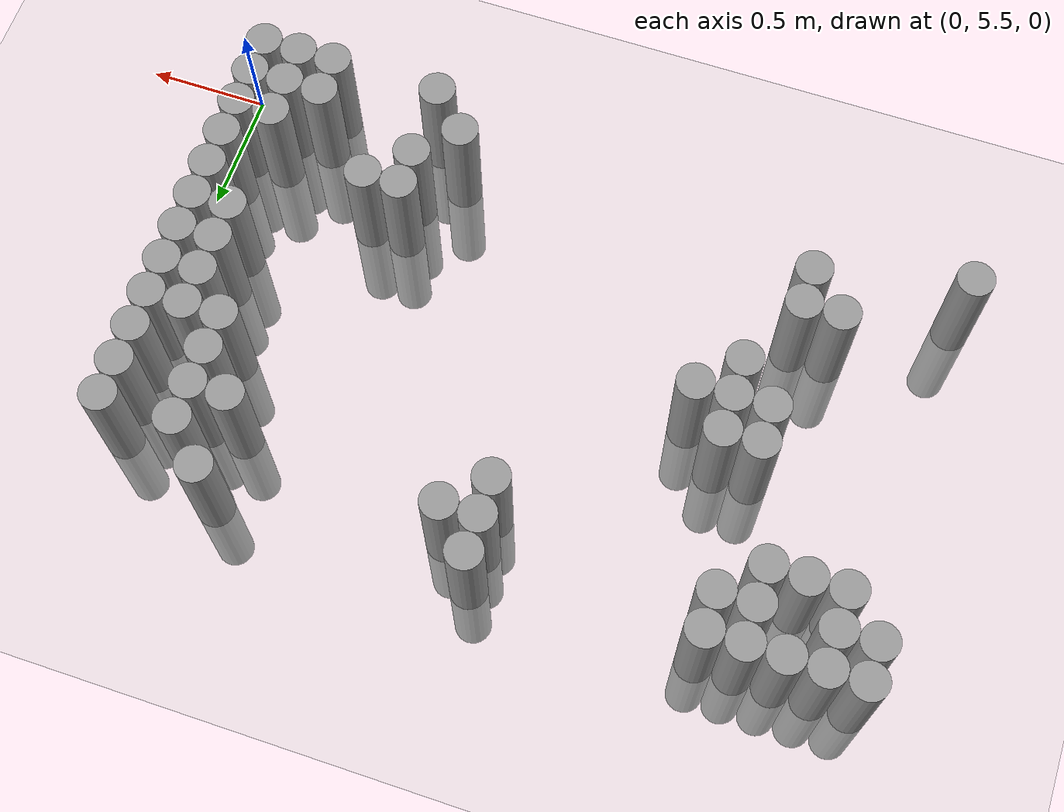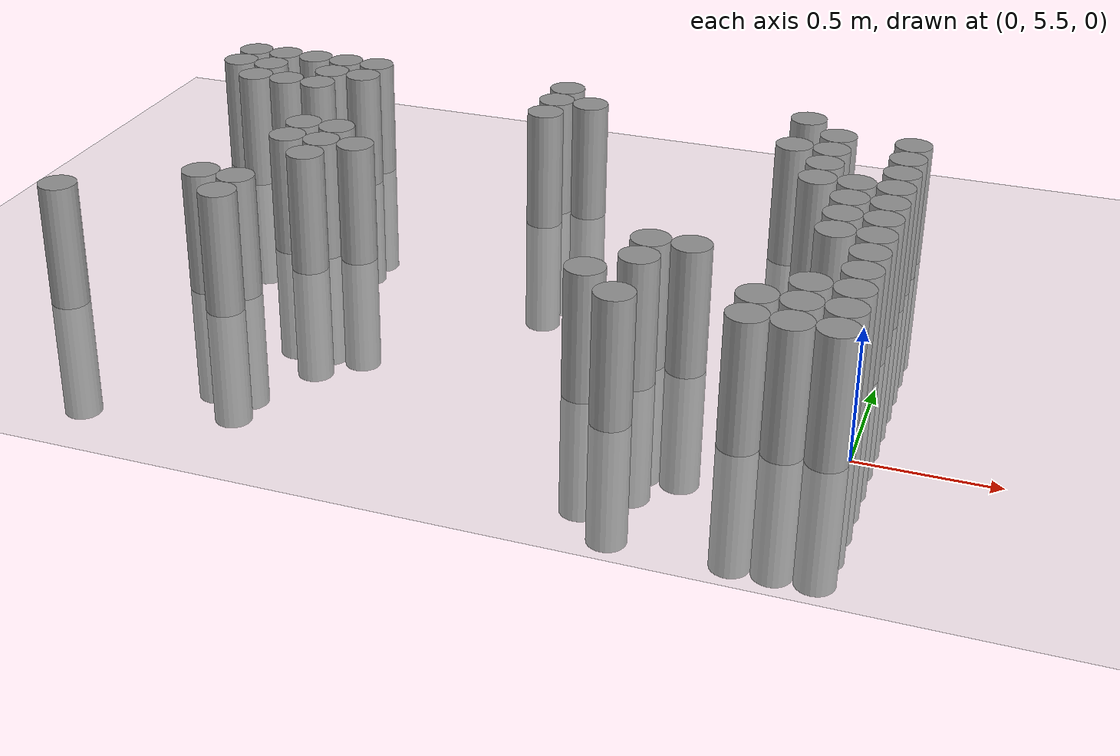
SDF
<sdf version="1.6">
 <world name="default">
  <model name="ground_plane">
   <static>1</static>
   <static>1</static>
   <link name="link">
    <collision name="collision">
     <geometry><plane><normal>0 0 1</normal><size>100 100</size></plane></geometry>
     <surface><friction><ode><mu>100</mu><mu2>50</mu2></ode></friction></surface>
    </collision>
    <visual name="visual">
     <cast_shadows>0</cast_shadows>
     <geometry><plane><normal>0 0 1</normal><size>100 100</size></plane></geometry>
     <material>
      <script><uri>file://media/materials/scripts/gazebo.material</uri><name>Gazebo/Grey</name></script>
     </material>
    </visual>
   </link>
  </model>
  <model name="unit_cylinder_170">
   <static>1</static>
   <pose>-3.075000 5.625000 0.000000 0.000000 0.000000 0.000000</pose>
   <link name="link">
    <inertial>
     <mass>1</mass>
     <inertia><ixx>0.145833</ixx><ixy>0</ixy><ixz>0</ixz><iyy>0.145833</iyy><iyz>0</iyz><izz>0.125</izz></inertia>
    </inertial>
    <collision name="collision">
     <geometry><cylinder><radius>0.075000</radius><length>1</length></cylinder></geometry>
    </collision>
    <visual name="visual">
     <geometry><cylinder><radius>0.075000</radius><length>1</length></cylinder></geometry>
     <material>
      <script><name>Gazebo/Grey</name><uri>file://media/materials/scripts/gazebo.material</uri></script>
     </material>
    </visual>
   </link>
  </model>
  <model name="unit_cylinder_171">
   <static>1</static>
   <pose>-3.075000 7.125000 0.000000 0.000000 0.000000 0.000000</pose>
   <link name="link">
    <inertial>
     <mass>1</mass>
     <inertia><ixx>0.145833</ixx><ixy>0</ixy><ixz>0</ixz><iyy>0.145833</iyy><iyz>0</iyz><izz>0.125</izz></inertia>
    </inertial>
    <collision name="collision">
     <geometry><cylinder><radius>0.075000</radius><length>1</length></cylinder></geometry>
    </collision>
    <visual name="visual">
     <geometry><cylinder><radius>0.075000</radius><length>1</length></cylinder></geometry>
     <material>
      <script><name>Gazebo/Grey</name><uri>file://media/materials/scripts/gazebo.material</uri></script>
     </material>
    </visual>
   </link>
  </model>
  <model name="unit_cylinder_172">
   <static>1</static>
   <pose>-3.075000 7.275000 0.000000 0.000000 0.000000 0.000000</pose>
   <link name="link">
    <inertial>
     <mass>1</mass>
     <inertia><ixx>0.145833</ixx><ixy>0</ixy><ixz>0</ixz><iyy>0.145833</iyy><iyz>0</iyz><izz>0.125</izz></inertia>
    </inertial>
    <collision name="collision">
     <geometry><cylinder><radius>0.075000</radius><length>1</length></cylinder></geometry>
    </collision>
    <visual name="visual">
     <geometry><cylinder><radius>0.075000</radius><length>1</length></cylinder></geometry>
     <material>
      <script><name>Gazebo/Grey</name><uri>file://media/materials/scripts/gazebo.material</uri></script>
     </material>
    </visual>
   </link>
  </model>
  <model name="unit_cylinder_174">
   <static>1</static>
   <pose>-2.925000 6.975000 0.000000 0.000000 0.000000 0.000000</pose>
   <link name="link">
    <inertial>
     <mass>1</mass>
     <inertia><ixx>0.145833</ixx><ixy>0</ixy><ixz>0</ixz><iyy>0.145833</iyy><iyz>0</iyz><izz>0.125</izz></inertia>
    </inertial>
    <collision name="collision">
     <geometry><cylinder><radius>0.075000</radius><length>1</length></cylinder></geometry>
    </collision>
    <visual name="visual">
     <geometry><cylinder><radius>0.075000</radius><length>1</length></cylinder></geometry>
     <material>
      <script><name>Gazebo/Grey</name><uri>file://media/materials/scripts/gazebo.material</uri></script>
     </material>
    </visual>
   </link>
  </model>
  <model name="unit_cylinder_175">
   <static>1</static>
   <pose>-2.925000 7.125000 0.000000 0.000000 0.000000 0.000000</pose>
   <link name="link">
    <inertial>
     <mass>1</mass>
     <inertia><ixx>0.145833</ixx><ixy>0</ixy><ixz>0</ixz><iyy>0.145833</iyy><iyz>0</iyz><izz>0.125</izz></inertia>
    </inertial>
    <collision name="collision">
     <geometry><cylinder><radius>0.075000</radius><length>1</length></cylinder></geometry>
    </collision>
    <visual name="visual">
     <geometry><cylinder><radius>0.075000</radius><length>1</length></cylinder></geometry>
     <material>
      <script><name>Gazebo/Grey</name><uri>file://media/materials/scripts/gazebo.material</uri></script>
     </material>
    </visual>
   </link>
  </model>
  <model name="unit_cylinder_176">
   <static>1</static>
   <pose>-2.925000 7.275000 0.000000 0.000000 0.000000 0.000000</pose>
   <link name="link">
    <inertial>
     <mass>1</mass>
     <inertia><ixx>0.145833</ixx><ixy>0</ixy><ixz>0</ixz><iyy>0.145833</iyy><iyz>0</iyz><izz>0.125</izz></inertia>
    </inertial>
    <collision name="collision">
     <geometry><cylinder><radius>0.075000</radius><length>1</length></cylinder></geometry>
    </collision>
    <visual name="visual">
     <geometry><cylinder><radius>0.075000</radius><length>1</length></cylinder></geometry>
     <material>
      <script><name>Gazebo/Grey</name><uri>file://media/materials/scripts/gazebo.material</uri></script>
     </material>
    </visual>
   </link>
  </model>
  <model name="unit_cylinder_178">
   <static>1</static>
   <pose>-2.775000 6.975000 0.000000 0.000000 0.000000 0.000000</pose>
   <link name="link">
    <inertial>
     <mass>1</mass>
     <inertia><ixx>0.145833</ixx><ixy>0</ixy><ixz>0</ixz><iyy>0.145833</iyy><iyz>0</iyz><izz>0.125</izz></inertia>
    </inertial>
    <collision name="collision">
     <geometry><cylinder><radius>0.075000</radius><length>1</length></cylinder></geometry>
    </collision>
    <visual name="visual">
     <geometry><cylinder><radius>0.075000</radius><length>1</length></cylinder></geometry>
     <material>
      <script><name>Gazebo/Grey</name><uri>file://media/materials/scripts/gazebo.material</uri></script>
     </material>
    </visual>
   </link>
  </model>
  <model name="unit_cylinder_179">
   <static>1</static>
   <pose>-2.775000 7.275000 0.000000 0.000000 0.000000 0.000000</pose>
   <link name="link">
    <inertial>
     <mass>1</mass>
     <inertia><ixx>0.145833</ixx><ixy>0</ixy><ixz>0</ixz><iyy>0.145833</iyy><iyz>0</iyz><izz>0.125</izz></inertia>
    </inertial>
    <collision name="collision">
     <geometry><cylinder><radius>0.075000</radius><length>1</length></cylinder></geometry>
    </collision>
    <visual name="visual">
     <geometry><cylinder><radius>0.075000</radius><length>1</length></cylinder></geometry>
     <material>
      <script><name>Gazebo/Grey</name><uri>file://media/materials/scripts/gazebo.material</uri></script>
     </material>
    </visual>
   </link>
  </model>
  <model name="unit_cylinder_181">
   <static>1</static>
   <pose>-2.625000 5.925000 0.000000 0.000000 0.000000 0.000000</pose>
   <link name="link">
    <inertial>
     <mass>1</mass>
     <inertia><ixx>0.145833</ixx><ixy>0</ixy><ixz>0</ixz><iyy>0.145833</iyy><iyz>0</iyz><izz>0.125</izz></inertia>
    </inertial>
    <collision name="collision">
     <geometry><cylinder><radius>0.075000</radius><length>1</length></cylinder></geometry>
    </collision>
    <visual name="visual">
     <geometry><cylinder><radius>0.075000</radius><length>1</length></cylinder></geometry>
     <material>
      <script><name>Gazebo/Grey</name><uri>file://media/materials/scripts/gazebo.material</uri></script>
     </material>
    </visual>
   </link>
  </model>
  <model name="unit_cylinder_182">
   <static>1</static>
   <pose>-2.625000 6.975000 0.000000 0.000000 0.000000 0.000000</pose>
   <link name="link">
    <inertial>
     <mass>1</mass>
     <inertia><ixx>0.145833</ixx><ixy>0</ixy><ixz>0</ixz><iyy>0.145833</iyy><iyz>0</iyz><izz>0.125</izz></inertia>
    </inertial>
    <collision name="collision">
     <geometry><cylinder><radius>0.075000</radius><length>1</length></cylinder></geometry>
    </collision>
    <visual name="visual">
     <geometry><cylinder><radius>0.075000</radius><length>1</length></cylinder></geometry>
     <material>
      <script><name>Gazebo/Grey</name><uri>file://media/materials/scripts/gazebo.material</uri></script>
     </material>
    </visual>
   </link>
  </model>
  <model name="unit_cylinder_183">
   <static>1</static>
   <pose>-2.625000 7.125000 0.000000 0.000000 0.000000 0.000000</pose>
   <link name="link">
    <inertial>
     <mass>1</mass>
     <inertia><ixx>0.145833</ixx><ixy>0</ixy><ixz>0</ixz><iyy>0.145833</iyy><iyz>0</iyz><izz>0.125</izz></inertia>
    </inertial>
    <collision name="collision">
     <geometry><cylinder><radius>0.075000</radius><length>1</length></cylinder></geometry>
    </collision>
    <visual name="visual">
     <geometry><cylinder><radius>0.075000</radius><length>1</length></cylinder></geometry>
     <material>
      <script><name>Gazebo/Grey</name><uri>file://media/materials/scripts/gazebo.material</uri></script>
     </material>
    </visual>
   </link>
  </model>
  <model name="unit_cylinder_184">
   <static>1</static>
   <pose>-2.625000 7.275000 0.000000 0.000000 0.000000 0.000000</pose>
   <link name="link">
    <inertial>
     <mass>1</mass>
     <inertia><ixx>0.145833</ixx><ixy>0</ixy><ixz>0</ixz><iyy>0.145833</iyy><iyz>0</iyz><izz>0.125</izz></inertia>
    </inertial>
    <collision name="collision">
     <geometry><cylinder><radius>0.075000</radius><length>1</length></cylinder></geometry>
    </collision>
    <visual name="visual">
     <geometry><cylinder><radius>0.075000</radius><length>1</length></cylinder></geometry>
     <material>
      <script><name>Gazebo/Grey</name><uri>file://media/materials/scripts/gazebo.material</uri></script>
     </material>
    </visual>
   </link>
  </model>
  <model name="unit_cylinder_186">
   <static>1</static>
   <pose>-2.475000 5.775000 0.000000 0.000000 0.000000 0.000000</pose>
   <link name="link">
    <inertial>
     <mass>1</mass>
     <inertia><ixx>0.145833</ixx><ixy>0</ixy><ixz>0</ixz><iyy>0.145833</iyy><iyz>0</iyz><izz>0.125</izz></inertia>
    </inertial>
    <collision name="collision">
     <geometry><cylinder><radius>0.075000</radius><length>1</length></cylinder></geometry>
    </collision>
    <visual name="visual">
     <geometry><cylinder><radius>0.075000</radius><length>1</length></cylinder></geometry>
     <material>
      <script><name>Gazebo/Grey</name><uri>file://media/materials/scripts/gazebo.material</uri></script>
     </material>
    </visual>
   </link>
  </model>
  <model name="unit_cylinder_187">
   <static>1</static>
   <pose>-2.475000 5.925000 0.000000 0.000000 0.000000 0.000000</pose>
   <link name="link">
    <inertial>
     <mass>1</mass>
     <inertia><ixx>0.145833</ixx><ixy>0</ixy><ixz>0</ixz><iyy>0.145833</iyy><iyz>0</iyz><izz>0.125</izz></inertia>
    </inertial>
    <collision name="collision">
     <geometry><cylinder><radius>0.075000</radius><length>1</length></cylinder></geometry>
    </collision>
    <visual name="visual">
     <geometry><cylinder><radius>0.075000</radius><length>1</length></cylinder></geometry>
     <material>
      <script><name>Gazebo/Grey</name><uri>file://media/materials/scripts/gazebo.material</uri></script>
     </material>
    </visual>
   </link>
  </model>
  <model name="unit_cylinder_188">
   <static>1</static>
   <pose>-2.475000 6.375000 0.000000 0.000000 0.000000 0.000000</pose>
   <link name="link">
    <inertial>
     <mass>1</mass>
     <inertia><ixx>0.145833</ixx><ixy>0</ixy><ixz>0</ixz><iyy>0.145833</iyy><iyz>0</iyz><izz>0.125</izz></inertia>
    </inertial>
    <collision name="collision">
     <geometry><cylinder><radius>0.075000</radius><length>1</length></cylinder></geometry>
    </collision>
    <visual name="visual">
     <geometry><cylinder><radius>0.075000</radius><length>1</length></cylinder></geometry>
     <material>
      <script><name>Gazebo/Grey</name><uri>file://media/materials/scripts/gazebo.material</uri></script>
     </material>
    </visual>
   </link>
  </model>
  <model name="unit_cylinder_189">
   <static>1</static>
   <pose>-2.475000 6.525000 0.000000 0.000000 0.000000 0.000000</pose>
   <link name="link">
    <inertial>
     <mass>1</mass>
     <inertia><ixx>0.145833</ixx><ixy>0</ixy><ixz>0</ixz><iyy>0.145833</iyy><iyz>0</iyz><izz>0.125</izz></inertia>
    </inertial>
    <collision name="collision">
     <geometry><cylinder><radius>0.075000</radius><length>1</length></cylinder></geometry>
    </collision>
    <visual name="visual">
     <geometry><cylinder><radius>0.075000</radius><length>1</length></cylinder></geometry>
     <material>
      <script><name>Gazebo/Grey</name><uri>file://media/materials/scripts/gazebo.material</uri></script>
     </material>
    </visual>
   </link>
  </model>
  <model name="unit_cylinder_190">
   <static>1</static>
   <pose>-2.475000 7.125000 0.000000 0.000000 0.000000 0.000000</pose>
   <link name="link">
    <inertial>
     <mass>1</mass>
     <inertia><ixx>0.145833</ixx><ixy>0</ixy><ixz>0</ixz><iyy>0.145833</iyy><iyz>0</iyz><izz>0.125</izz></inertia>
    </inertial>
    <collision name="collision">
     <geometry><cylinder><radius>0.075000</radius><length>1</length></cylinder></geometry>
    </collision>
    <visual name="visual">
     <geometry><cylinder><radius>0.075000</radius><length>1</length></cylinder></geometry>
     <material>
      <script><name>Gazebo/Grey</name><uri>file://media/materials/scripts/gazebo.material</uri></script>
     </material>
    </visual>
   </link>
  </model>
  <model name="unit_cylinder_191">
   <static>1</static>
   <pose>-2.475000 7.275000 0.000000 0.000000 0.000000 0.000000</pose>
   <link name="link">
    <inertial>
     <mass>1</mass>
     <inertia><ixx>0.145833</ixx><ixy>0</ixy><ixz>0</ixz><iyy>0.145833</iyy><iyz>0</iyz><izz>0.125</izz></inertia>
    </inertial>
    <collision name="collision">
     <geometry><cylinder><radius>0.075000</radius><length>1</length></cylinder></geometry>
    </collision>
    <visual name="visual">
     <geometry><cylinder><radius>0.075000</radius><length>1</length></cylinder></geometry>
     <material>
      <script><name>Gazebo/Grey</name><uri>file://media/materials/scripts/gazebo.material</uri></script>
     </material>
    </visual>
   </link>
  </model>
  <model name="unit_cylinder_194">
   <static>1</static>
   <pose>-2.325000 6.225000 0.000000 0.000000 0.000000 0.000000</pose>
   <link name="link">
    <inertial>
     <mass>1</mass>
     <inertia><ixx>0.145833</ixx><ixy>0</ixy><ixz>0</ixz><iyy>0.145833</iyy><iyz>0</iyz><izz>0.125</izz></inertia>
    </inertial>
    <collision name="collision">
     <geometry><cylinder><radius>0.075000</radius><length>1</length></cylinder></geometry>
    </collision>
    <visual name="visual">
     <geometry><cylinder><radius>0.075000</radius><length>1</length></cylinder></geometry>
     <material>
      <script><name>Gazebo/Grey</name><uri>file://media/materials/scripts/gazebo.material</uri></script>
     </material>
    </visual>
   </link>
  </model>
  <model name="unit_cylinder_195">
   <static>1</static>
   <pose>-2.325000 6.375000 0.000000 0.000000 0.000000 0.000000</pose>
   <link name="link">
    <inertial>
     <mass>1</mass>
     <inertia><ixx>0.145833</ixx><ixy>0</ixy><ixz>0</ixz><iyy>0.145833</iyy><iyz>0</iyz><izz>0.125</izz></inertia>
    </inertial>
    <collision name="collision">
     <geometry><cylinder><radius>0.075000</radius><length>1</length></cylinder></geometry>
    </collision>
    <visual name="visual">
     <geometry><cylinder><radius>0.075000</radius><length>1</length></cylinder></geometry>
     <material>
      <script><name>Gazebo/Grey</name><uri>file://media/materials/scripts/gazebo.material</uri></script>
     </material>
    </visual>
   </link>
  </model>
  <model name="unit_cylinder_196">
   <static>1</static>
   <pose>-2.325000 6.525000 0.000000 0.000000 0.000000 0.000000</pose>
   <link name="link">
    <inertial>
     <mass>1</mass>
     <inertia><ixx>0.145833</ixx><ixy>0</ixy><ixz>0</ixz><iyy>0.145833</iyy><iyz>0</iyz><izz>0.125</izz></inertia>
    </inertial>
    <collision name="collision">
     <geometry><cylinder><radius>0.075000</radius><length>1</length></cylinder></geometry>
    </collision>
    <visual name="visual">
     <geometry><cylinder><radius>0.075000</radius><length>1</length></cylinder></geometry>
     <material>
      <script><name>Gazebo/Grey</name><uri>file://media/materials/scripts/gazebo.material</uri></script>
     </material>
    </visual>
   </link>
  </model>
  <model name="unit_cylinder_199">
   <static>1</static>
   <pose>-2.175000 6.375000 0.000000 0.000000 0.000000 0.000000</pose>
   <link name="link">
    <inertial>
     <mass>1</mass>
     <inertia><ixx>0.145833</ixx><ixy>0</ixy><ixz>0</ixz><iyy>0.145833</iyy><iyz>0</iyz><izz>0.125</izz></inertia>
    </inertial>
    <collision name="collision">
     <geometry><cylinder><radius>0.075000</radius><length>1</length></cylinder></geometry>
    </collision>
    <visual name="visual">
     <geometry><cylinder><radius>0.075000</radius><length>1</length></cylinder></geometry>
     <material>
      <script><name>Gazebo/Grey</name><uri>file://media/materials/scripts/gazebo.material</uri></script>
     </material>
    </visual>
   </link>
  </model>
  <model name="unit_cylinder_207">
   <static>1</static>
   <pose>-1.575000 6.975000 0.000000 0.000000 0.000000 0.000000</pose>
   <link name="link">
    <inertial>
     <mass>1</mass>
     <inertia><ixx>0.145833</ixx><ixy>0</ixy><ixz>0</ixz><iyy>0.145833</iyy><iyz>0</iyz><izz>0.125</izz></inertia>
    </inertial>
    <collision name="collision">
     <geometry><cylinder><radius>0.075000</radius><length>1</length></cylinder></geometry>
    </collision>
    <visual name="visual">
     <geometry><cylinder><radius>0.075000</radius><length>1</length></cylinder></geometry>
     <material>
      <script><name>Gazebo/Grey</name><uri>file://media/materials/scripts/gazebo.material</uri></script>
     </material>
    </visual>
   </link>
  </model>
  <model name="unit_cylinder_208">
   <static>1</static>
   <pose>-1.575000 7.125000 0.000000 0.000000 0.000000 0.000000</pose>
   <link name="link">
    <inertial>
     <mass>1</mass>
     <inertia><ixx>0.145833</ixx><ixy>0</ixy><ixz>0</ixz><iyy>0.145833</iyy><iyz>0</iyz><izz>0.125</izz></inertia>
    </inertial>
    <collision name="collision">
     <geometry><cylinder><radius>0.075000</radius><length>1</length></cylinder></geometry>
    </collision>
    <visual name="visual">
     <geometry><cylinder><radius>0.075000</radius><length>1</length></cylinder></geometry>
     <material>
      <script><name>Gazebo/Grey</name><uri>file://media/materials/scripts/gazebo.material</uri></script>
     </material>
    </visual>
   </link>
  </model>
  <model name="unit_cylinder_209">
   <static>1</static>
   <pose>-1.575000 7.275000 0.000000 0.000000 0.000000 0.000000</pose>
   <link name="link">
    <inertial>
     <mass>1</mass>
     <inertia><ixx>0.145833</ixx><ixy>0</ixy><ixz>0</ixz><iyy>0.145833</iyy><iyz>0</iyz><izz>0.125</izz></inertia>
    </inertial>
    <collision name="collision">
     <geometry><cylinder><radius>0.075000</radius><length>1</length></cylinder></geometry>
    </collision>
    <visual name="visual">
     <geometry><cylinder><radius>0.075000</radius><length>1</length></cylinder></geometry>
     <material>
      <script><name>Gazebo/Grey</name><uri>file://media/materials/scripts/gazebo.material</uri></script>
     </material>
    </visual>
   </link>
  </model>
  <model name="unit_cylinder_212">
   <static>1</static>
   <pose>-1.425000 7.125000 0.000000 0.000000 0.000000 0.000000</pose>
   <link name="link">
    <inertial>
     <mass>1</mass>
     <inertia><ixx>0.145833</ixx><ixy>0</ixy><ixz>0</ixz><iyy>0.145833</iyy><iyz>0</iyz><izz>0.125</izz></inertia>
    </inertial>
    <collision name="collision">
     <geometry><cylinder><radius>0.075000</radius><length>1</length></cylinder></geometry>
    </collision>
    <visual name="visual">
     <geometry><cylinder><radius>0.075000</radius><length>1</length></cylinder></geometry>
     <material>
      <script><name>Gazebo/Grey</name><uri>file://media/materials/scripts/gazebo.material</uri></script>
     </material>
    </visual>
   </link>
  </model>
  <model name="unit_cylinder_216">
   <static>1</static>
   <pose>-0.975000 5.625000 0.000000 0.000000 0.000000 0.000000</pose>
   <link name="link">
    <inertial>
     <mass>1</mass>
     <inertia><ixx>0.145833</ixx><ixy>0</ixy><ixz>0</ixz><iyy>0.145833</iyy><iyz>0</iyz><izz>0.125</izz></inertia>
    </inertial>
    <collision name="collision">
     <geometry><cylinder><radius>0.075000</radius><length>1</length></cylinder></geometry>
    </collision>
    <visual name="visual">
     <geometry><cylinder><radius>0.075000</radius><length>1</length></cylinder></geometry>
     <material>
      <script><name>Gazebo/Grey</name><uri>file://media/materials/scripts/gazebo.material</uri></script>
     </material>
    </visual>
   </link>
  </model>
  <model name="unit_cylinder_217">
   <static>1</static>
   <pose>-0.825000 5.475000 0.000000 0.000000 0.000000 0.000000</pose>
   <link name="link">
    <inertial>
     <mass>1</mass>
     <inertia><ixx>0.145833</ixx><ixy>0</ixy><ixz>0</ixz><iyy>0.145833</iyy><iyz>0</iyz><izz>0.125</izz></inertia>
    </inertial>
    <collision name="collision">
     <geometry><cylinder><radius>0.075000</radius><length>1</length></cylinder></geometry>
    </collision>
    <visual name="visual">
     <geometry><cylinder><radius>0.075000</radius><length>1</length></cylinder></geometry>
     <material>
      <script><name>Gazebo/Grey</name><uri>file://media/materials/scripts/gazebo.material</uri></script>
     </material>
    </visual>
   </link>
  </model>
  <model name="unit_cylinder_218">
   <static>1</static>
   <pose>-0.825000 5.775000 0.000000 0.000000 0.000000 0.000000</pose>
   <link name="link">
    <inertial>
     <mass>1</mass>
     <inertia><ixx>0.145833</ixx><ixy>0</ixy><ixz>0</ixz><iyy>0.145833</iyy><iyz>0</iyz><izz>0.125</izz></inertia>
    </inertial>
    <collision name="collision">
     <geometry><cylinder><radius>0.075000</radius><length>1</length></cylinder></geometry>
    </collision>
    <visual name="visual">
     <geometry><cylinder><radius>0.075000</radius><length>1</length></cylinder></geometry>
     <material>
      <script><name>Gazebo/Grey</name><uri>file://media/materials/scripts/gazebo.material</uri></script>
     </material>
    </visual>
   </link>
  </model>
  <model name="unit_cylinder_219">
   <static>1</static>
   <pose>-0.825000 5.925000 0.000000 0.000000 0.000000 0.000000</pose>
   <link name="link">
    <inertial>
     <mass>1</mass>
     <inertia><ixx>0.145833</ixx><ixy>0</ixy><ixz>0</ixz><iyy>0.145833</iyy><iyz>0</iyz><izz>0.125</izz></inertia>
    </inertial>
    <collision name="collision">
     <geometry><cylinder><radius>0.075000</radius><length>1</length></cylinder></geometry>
    </collision>
    <visual name="visual">
     <geometry><cylinder><radius>0.075000</radius><length>1</length></cylinder></geometry>
     <material>
      <script><name>Gazebo/Grey</name><uri>file://media/materials/scripts/gazebo.material</uri></script>
     </material>
    </visual>
   </link>
  </model>
  <model name="unit_cylinder_223">
   <static>1</static>
   <pose>-0.675000 5.925000 0.000000 0.000000 0.000000 0.000000</pose>
   <link name="link">
    <inertial>
     <mass>1</mass>
     <inertia><ixx>0.145833</ixx><ixy>0</ixy><ixz>0</ixz><iyy>0.145833</iyy><iyz>0</iyz><izz>0.125</izz></inertia>
    </inertial>
    <collision name="collision">
     <geometry><cylinder><radius>0.075000</radius><length>1</length></cylinder></geometry>
    </collision>
    <visual name="visual">
     <geometry><cylinder><radius>0.075000</radius><length>1</length></cylinder></geometry>
     <material>
      <script><name>Gazebo/Grey</name><uri>file://media/materials/scripts/gazebo.material</uri></script>
     </material>
    </visual>
   </link>
  </model>
  <model name="unit_cylinder_229">
   <static>1</static>
   <pose>-0.525000 6.975000 0.000000 0.000000 0.000000 0.000000</pose>
   <link name="link">
    <inertial>
     <mass>1</mass>
     <inertia><ixx>0.145833</ixx><ixy>0</ixy><ixz>0</ixz><iyy>0.145833</iyy><iyz>0</iyz><izz>0.125</izz></inertia>
    </inertial>
    <collision name="collision">
     <geometry><cylinder><radius>0.075000</radius><length>1</length></cylinder></geometry>
    </collision>
    <visual name="visual">
     <geometry><cylinder><radius>0.075000</radius><length>1</length></cylinder></geometry>
     <material>
      <script><name>Gazebo/Grey</name><uri>file://media/materials/scripts/gazebo.material</uri></script>
     </material>
    </visual>
   </link>
  </model>
  <model name="unit_cylinder_230">
   <static>1</static>
   <pose>-0.525000 7.275000 0.000000 0.000000 0.000000 0.000000</pose>
   <link name="link">
    <inertial>
     <mass>1</mass>
     <inertia><ixx>0.145833</ixx><ixy>0</ixy><ixz>0</ixz><iyy>0.145833</iyy><iyz>0</iyz><izz>0.125</izz></inertia>
    </inertial>
    <collision name="collision">
     <geometry><cylinder><radius>0.075000</radius><length>1</length></cylinder></geometry>
    </collision>
    <visual name="visual">
     <geometry><cylinder><radius>0.075000</radius><length>1</length></cylinder></geometry>
     <material>
      <script><name>Gazebo/Grey</name><uri>file://media/materials/scripts/gazebo.material</uri></script>
     </material>
    </visual>
   </link>
  </model>
  <model name="unit_cylinder_236">
   <static>1</static>
   <pose>-0.375000 5.475000 0.000000 0.000000 0.000000 0.000000</pose>
   <link name="link">
    <inertial>
     <mass>1</mass>
     <inertia><ixx>0.145833</ixx><ixy>0</ixy><ixz>0</ixz><iyy>0.145833</iyy><iyz>0</iyz><izz>0.125</izz></inertia>
    </inertial>
    <collision name="collision">
     <geometry><cylinder><radius>0.075000</radius><length>1</length></cylinder></geometry>
    </collision>
    <visual name="visual">
     <geometry><cylinder><radius>0.075000</radius><length>1</length></cylinder></geometry>
     <material>
      <script><name>Gazebo/Grey</name><uri>file://media/materials/scripts/gazebo.material</uri></script>
     </material>
    </visual>
   </link>
  </model>
  <model name="unit_cylinder_237">
   <static>1</static>
   <pose>-0.375000 5.625000 0.000000 0.000000 0.000000 0.000000</pose>
   <link name="link">
    <inertial>
     <mass>1</mass>
     <inertia><ixx>0.145833</ixx><ixy>0</ixy><ixz>0</ixz><iyy>0.145833</iyy><iyz>0</iyz><izz>0.125</izz></inertia>
    </inertial>
    <collision name="collision">
     <geometry><cylinder><radius>0.075000</radius><length>1</length></cylinder></geometry>
    </collision>
    <visual name="visual">
     <geometry><cylinder><radius>0.075000</radius><length>1</length></cylinder></geometry>
     <material>
      <script><name>Gazebo/Grey</name><uri>file://media/materials/scripts/gazebo.material</uri></script>
     </material>
    </visual>
   </link>
  </model>
  <model name="unit_cylinder_238">
   <static>1</static>
   <pose>-0.375000 6.675000 0.000000 0.000000 0.000000 0.000000</pose>
   <link name="link">
    <inertial>
     <mass>1</mass>
     <inertia><ixx>0.145833</ixx><ixy>0</ixy><ixz>0</ixz><iyy>0.145833</iyy><iyz>0</iyz><izz>0.125</izz></inertia>
    </inertial>
    <collision name="collision">
     <geometry><cylinder><radius>0.075000</radius><length>1</length></cylinder></geometry>
    </collision>
    <visual name="visual">
     <geometry><cylinder><radius>0.075000</radius><length>1</length></cylinder></geometry>
     <material>
      <script><name>Gazebo/Grey</name><uri>file://media/materials/scripts/gazebo.material</uri></script>
     </material>
    </visual>
   </link>
  </model>
  <model name="unit_cylinder_239">
   <static>1</static>
   <pose>-0.375000 6.825000 0.000000 0.000000 0.000000 0.000000</pose>
   <link name="link">
    <inertial>
     <mass>1</mass>
     <inertia><ixx>0.145833</ixx><ixy>0</ixy><ixz>0</ixz><iyy>0.145833</iyy><iyz>0</iyz><izz>0.125</izz></inertia>
    </inertial>
    <collision name="collision">
     <geometry><cylinder><radius>0.075000</radius><length>1</length></cylinder></geometry>
    </collision>
    <visual name="visual">
     <geometry><cylinder><radius>0.075000</radius><length>1</length></cylinder></geometry>
     <material>
      <script><name>Gazebo/Grey</name><uri>file://media/materials/scripts/gazebo.material</uri></script>
     </material>
    </visual>
   </link>
  </model>
  <model name="unit_cylinder_240">
   <static>1</static>
   <pose>-0.375000 6.975000 0.000000 0.000000 0.000000 0.000000</pose>
   <link name="link">
    <inertial>
     <mass>1</mass>
     <inertia><ixx>0.145833</ixx><ixy>0</ixy><ixz>0</ixz><iyy>0.145833</iyy><iyz>0</iyz><izz>0.125</izz></inertia>
    </inertial>
    <collision name="collision">
     <geometry><cylinder><radius>0.075000</radius><length>1</length></cylinder></geometry>
    </collision>
    <visual name="visual">
     <geometry><cylinder><radius>0.075000</radius><length>1</length></cylinder></geometry>
     <material>
      <script><name>Gazebo/Grey</name><uri>file://media/materials/scripts/gazebo.material</uri></script>
     </material>
    </visual>
   </link>
  </model>
  <model name="unit_cylinder_241">
   <static>1</static>
   <pose>-0.375000 7.125000 0.000000 0.000000 0.000000 0.000000</pose>
   <link name="link">
    <inertial>
     <mass>1</mass>
     <inertia><ixx>0.145833</ixx><ixy>0</ixy><ixz>0</ixz><iyy>0.145833</iyy><iyz>0</iyz><izz>0.125</izz></inertia>
    </inertial>
    <collision name="collision">
     <geometry><cylinder><radius>0.075000</radius><length>1</length></cylinder></geometry>
    </collision>
    <visual name="visual">
     <geometry><cylinder><radius>0.075000</radius><length>1</length></cylinder></geometry>
     <material>
      <script><name>Gazebo/Grey</name><uri>file://media/materials/scripts/gazebo.material</uri></script>
     </material>
    </visual>
   </link>
  </model>
  <model name="unit_cylinder_250">
   <static>1</static>
   <pose>-0.225000 5.475000 0.000000 0.000000 0.000000 0.000000</pose>
   <link name="link">
    <inertial>
     <mass>1</mass>
     <inertia><ixx>0.145833</ixx><ixy>0</ixy><ixz>0</ixz><iyy>0.145833</iyy><iyz>0</iyz><izz>0.125</izz></inertia>
    </inertial>
    <collision name="collision">
     <geometry><cylinder><radius>0.075000</radius><length>1</length></cylinder></geometry>
    </collision>
    <visual name="visual">
     <geometry><cylinder><radius>0.075000</radius><length>1</length></cylinder></geometry>
     <material>
      <script><name>Gazebo/Grey</name><uri>file://media/materials/scripts/gazebo.material</uri></script>
     </material>
    </visual>
   </link>
  </model>
  <model name="unit_cylinder_251">
   <static>1</static>
   <pose>-0.225000 5.625000 0.000000 0.000000 0.000000 0.000000</pose>
   <link name="link">
    <inertial>
     <mass>1</mass>
     <inertia><ixx>0.145833</ixx><ixy>0</ixy><ixz>0</ixz><iyy>0.145833</iyy><iyz>0</iyz><izz>0.125</izz></inertia>
    </inertial>
    <collision name="collision">
     <geometry><cylinder><radius>0.075000</radius><length>1</length></cylinder></geometry>
    </collision>
    <visual name="visual">
     <geometry><cylinder><radius>0.075000</radius><length>1</length></cylinder></geometry>
     <material>
      <script><name>Gazebo/Grey</name><uri>file://media/materials/scripts/gazebo.material</uri></script>
     </material>
    </visual>
   </link>
  </model>
  <model name="unit_cylinder_252">
   <static>1</static>
   <pose>-0.225000 5.775000 0.000000 0.000000 0.000000 0.000000</pose>
   <link name="link">
    <inertial>
     <mass>1</mass>
     <inertia><ixx>0.145833</ixx><ixy>0</ixy><ixz>0</ixz><iyy>0.145833</iyy><iyz>0</iyz><izz>0.125</izz></inertia>
    </inertial>
    <collision name="collision">
     <geometry><cylinder><radius>0.075000</radius><length>1</length></cylinder></geometry>
    </collision>
    <visual name="visual">
     <geometry><cylinder><radius>0.075000</radius><length>1</length></cylinder></geometry>
     <material>
      <script><name>Gazebo/Grey</name><uri>file://media/materials/scripts/gazebo.material</uri></script>
     </material>
    </visual>
   </link>
  </model>
  <model name="unit_cylinder_253">
   <static>1</static>
   <pose>-0.225000 6.225000 0.000000 0.000000 0.000000 0.000000</pose>
   <link name="link">
    <inertial>
     <mass>1</mass>
     <inertia><ixx>0.145833</ixx><ixy>0</ixy><ixz>0</ixz><iyy>0.145833</iyy><iyz>0</iyz><izz>0.125</izz></inertia>
    </inertial>
    <collision name="collision">
     <geometry><cylinder><radius>0.075000</radius><length>1</length></cylinder></geometry>
    </collision>
    <visual name="visual">
     <geometry><cylinder><radius>0.075000</radius><length>1</length></cylinder></geometry>
     <material>
      <script><name>Gazebo/Grey</name><uri>file://media/materials/scripts/gazebo.material</uri></script>
     </material>
    </visual>
   </link>
  </model>
  <model name="unit_cylinder_254">
   <static>1</static>
   <pose>-0.225000 6.375000 0.000000 0.000000 0.000000 0.000000</pose>
   <link name="link">
    <inertial>
     <mass>1</mass>
     <inertia><ixx>0.145833</ixx><ixy>0</ixy><ixz>0</ixz><iyy>0.145833</iyy><iyz>0</iyz><izz>0.125</izz></inertia>
    </inertial>
    <collision name="collision">
     <geometry><cylinder><radius>0.075000</radius><length>1</length></cylinder></geometry>
    </collision>
    <visual name="visual">
     <geometry><cylinder><radius>0.075000</radius><length>1</length></cylinder></geometry>
     <material>
      <script><name>Gazebo/Grey</name><uri>file://media/materials/scripts/gazebo.material</uri></script>
     </material>
    </visual>
   </link>
  </model>
  <model name="unit_cylinder_255">
   <static>1</static>
   <pose>-0.225000 6.525000 0.000000 0.000000 0.000000 0.000000</pose>
   <link name="link">
    <inertial>
     <mass>1</mass>
     <inertia><ixx>0.145833</ixx><ixy>0</ixy><ixz>0</ixz><iyy>0.145833</iyy><iyz>0</iyz><izz>0.125</izz></inertia>
    </inertial>
    <collision name="collision">
     <geometry><cylinder><radius>0.075000</radius><length>1</length></cylinder></geometry>
    </collision>
    <visual name="visual">
     <geometry><cylinder><radius>0.075000</radius><length>1</length></cylinder></geometry>
     <material>
      <script><name>Gazebo/Grey</name><uri>file://media/materials/scripts/gazebo.material</uri></script>
     </material>
    </visual>
   </link>
  </model>
  <model name="unit_cylinder_256">
   <static>1</static>
   <pose>-0.225000 6.675000 0.000000 0.000000 0.000000 0.000000</pose>
   <link name="link">
    <inertial>
     <mass>1</mass>
     <inertia><ixx>0.145833</ixx><ixy>0</ixy><ixz>0</ixz><iyy>0.145833</iyy><iyz>0</iyz><izz>0.125</izz></inertia>
    </inertial>
    <collision name="collision">
     <geometry><cylinder><radius>0.075000</radius><length>1</length></cylinder></geometry>
    </collision>
    <visual name="visual">
     <geometry><cylinder><radius>0.075000</radius><length>1</length></cylinder></geometry>
     <material>
      <script><name>Gazebo/Grey</name><uri>file://media/materials/scripts/gazebo.material</uri></script>
     </material>
    </visual>
   </link>
  </model>
  <model name="unit_cylinder_265">
   <static>1</static>
   <pose>-0.075000 5.475000 0.000000 0.000000 0.000000 0.000000</pose>
   <link name="link">
    <inertial>
     <mass>1</mass>
     <inertia><ixx>0.145833</ixx><ixy>0</ixy><ixz>0</ixz><iyy>0.145833</iyy><iyz>0</iyz><izz>0.125</izz></inertia>
    </inertial>
    <collision name="collision">
     <geometry><cylinder><radius>0.075000</radius><length>1</length></cylinder></geometry>
    </collision>
    <visual name="visual">
     <geometry><cylinder><radius>0.075000</radius><length>1</length></cylinder></geometry>
     <material>
      <script><name>Gazebo/Grey</name><uri>file://media/materials/scripts/gazebo.material</uri></script>
     </material>
    </visual>
   </link>
  </model>
  <model name="unit_cylinder_266">
   <static>1</static>
   <pose>-0.075000 5.625000 0.000000 0.000000 0.000000 0.000000</pose>
   <link name="link">
    <inertial>
     <mass>1</mass>
     <inertia><ixx>0.145833</ixx><ixy>0</ixy><ixz>0</ixz><iyy>0.145833</iyy><iyz>0</iyz><izz>0.125</izz></inertia>
    </inertial>
    <collision name="collision">
     <geometry><cylinder><radius>0.075000</radius><length>1</length></cylinder></geometry>
    </collision>
    <visual name="visual">
     <geometry><cylinder><radius>0.075000</radius><length>1</length></cylinder></geometry>
     <material>
      <script><name>Gazebo/Grey</name><uri>file://media/materials/scripts/gazebo.material</uri></script>
     </material>
    </visual>
   </link>
  </model>
  <model name="unit_cylinder_267">
   <static>1</static>
   <pose>-0.075000 5.775000 0.000000 0.000000 0.000000 0.000000</pose>
   <link name="link">
    <inertial>
     <mass>1</mass>
     <inertia><ixx>0.145833</ixx><ixy>0</ixy><ixz>0</ixz><iyy>0.145833</iyy><iyz>0</iyz><izz>0.125</izz></inertia>
    </inertial>
    <collision name="collision">
     <geometry><cylinder><radius>0.075000</radius><length>1</length></cylinder></geometry>
    </collision>
    <visual name="visual">
     <geometry><cylinder><radius>0.075000</radius><length>1</length></cylinder></geometry>
     <material>
      <script><name>Gazebo/Grey</name><uri>file://media/materials/scripts/gazebo.material</uri></script>
     </material>
    </visual>
   </link>
  </model>
  <model name="unit_cylinder_268">
   <static>1</static>
   <pose>-0.075000 5.925000 0.000000 0.000000 0.000000 0.000000</pose>
   <link name="link">
    <inertial>
     <mass>1</mass>
     <inertia><ixx>0.145833</ixx><ixy>0</ixy><ixz>0</ixz><iyy>0.145833</iyy><iyz>0</iyz><izz>0.125</izz></inertia>
    </inertial>
    <collision name="collision">
     <geometry><cylinder><radius>0.075000</radius><length>1</length></cylinder></geometry>
    </collision>
    <visual name="visual">
     <geometry><cylinder><radius>0.075000</radius><length>1</length></cylinder></geometry>
     <material>
      <script><name>Gazebo/Grey</name><uri>file://media/materials/scripts/gazebo.material</uri></script>
     </material>
    </visual>
   </link>
  </model>
  <model name="unit_cylinder_269">
   <static>1</static>
   <pose>-0.075000 6.075000 0.000000 0.000000 0.000000 0.000000</pose>
   <link name="link">
    <inertial>
     <mass>1</mass>
     <inertia><ixx>0.145833</ixx><ixy>0</ixy><ixz>0</ixz><iyy>0.145833</iyy><iyz>0</iyz><izz>0.125</izz></inertia>
    </inertial>
    <collision name="collision">
     <geometry><cylinder><radius>0.075000</radius><length>1</length></cylinder></geometry>
    </collision>
    <visual name="visual">
     <geometry><cylinder><radius>0.075000</radius><length>1</length></cylinder></geometry>
     <material>
      <script><name>Gazebo/Grey</name><uri>file://media/materials/scripts/gazebo.material</uri></script>
     </material>
    </visual>
   </link>
  </model>
  <model name="unit_cylinder_270">
   <static>1</static>
   <pose>-0.075000 6.225000 0.000000 0.000000 0.000000 0.000000</pose>
   <link name="link">
    <inertial>
     <mass>1</mass>
     <inertia><ixx>0.145833</ixx><ixy>0</ixy><ixz>0</ixz><iyy>0.145833</iyy><iyz>0</iyz><izz>0.125</izz></inertia>
    </inertial>
    <collision name="collision">
     <geometry><cylinder><radius>0.075000</radius><length>1</length></cylinder></geometry>
    </collision>
    <visual name="visual">
     <geometry><cylinder><radius>0.075000</radius><length>1</length></cylinder></geometry>
     <material>
      <script><name>Gazebo/Grey</name><uri>file://media/materials/scripts/gazebo.material</uri></script>
     </material>
    </visual>
   </link>
  </model>
  <model name="unit_cylinder_271">
   <static>1</static>
   <pose>-0.075000 6.375000 0.000000 0.000000 0.000000 0.000000</pose>
   <link name="link">
    <inertial>
     <mass>1</mass>
     <inertia><ixx>0.145833</ixx><ixy>0</ixy><ixz>0</ixz><iyy>0.145833</iyy><iyz>0</iyz><izz>0.125</izz></inertia>
    </inertial>
    <collision name="collision">
     <geometry><cylinder><radius>0.075000</radius><length>1</length></cylinder></geometry>
    </collision>
    <visual name="visual">
     <geometry><cylinder><radius>0.075000</radius><length>1</length></cylinder></geometry>
     <material>
      <script><name>Gazebo/Grey</name><uri>file://media/materials/scripts/gazebo.material</uri></script>
     </material>
    </visual>
   </link>
  </model>
  <model name="unit_cylinder_272">
   <static>1</static>
   <pose>-0.075000 6.525000 0.000000 0.000000 0.000000 0.000000</pose>
   <link name="link">
    <inertial>
     <mass>1</mass>
     <inertia><ixx>0.145833</ixx><ixy>0</ixy><ixz>0</ixz><iyy>0.145833</iyy><iyz>0</iyz><izz>0.125</izz></inertia>
    </inertial>
    <collision name="collision">
     <geometry><cylinder><radius>0.075000</radius><length>1</length></cylinder></geometry>
    </collision>
    <visual name="visual">
     <geometry><cylinder><radius>0.075000</radius><length>1</length></cylinder></geometry>
     <material>
      <script><name>Gazebo/Grey</name><uri>file://media/materials/scripts/gazebo.material</uri></script>
     </material>
    </visual>
   </link>
  </model>
  <model name="unit_cylinder_273">
   <static>1</static>
   <pose>-0.075000 6.675000 0.000000 0.000000 0.000000 0.000000</pose>
   <link name="link">
    <inertial>
     <mass>1</mass>
     <inertia><ixx>0.145833</ixx><ixy>0</ixy><ixz>0</ixz><iyy>0.145833</iyy><iyz>0</iyz><izz>0.125</izz></inertia>
    </inertial>
    <collision name="collision">
     <geometry><cylinder><radius>0.075000</radius><length>1</length></cylinder></geometry>
    </collision>
    <visual name="visual">
     <geometry><cylinder><radius>0.075000</radius><length>1</length></cylinder></geometry>
     <material>
      <script><name>Gazebo/Grey</name><uri>file://media/materials/scripts/gazebo.material</uri></script>
     </material>
    </visual>
   </link>
  </model>
  <model name="unit_cylinder_274">
   <static>1</static>
   <pose>-0.075000 6.825000 0.000000 0.000000 0.000000 0.000000</pose>
   <link name="link">
    <inertial>
     <mass>1</mass>
     <inertia><ixx>0.145833</ixx><ixy>0</ixy><ixz>0</ixz><iyy>0.145833</iyy><iyz>0</iyz><izz>0.125</izz></inertia>
    </inertial>
    <collision name="collision">
     <geometry><cylinder><radius>0.075000</radius><length>1</length></cylinder></geometry>
    </collision>
    <visual name="visual">
     <geometry><cylinder><radius>0.075000</radius><length>1</length></cylinder></geometry>
     <material>
      <script><name>Gazebo/Grey</name><uri>file://media/materials/scripts/gazebo.material</uri></script>
     </material>
    </visual>
   </link>
  </model>
  <model name="unit_cylinder_275">
   <static>1</static>
   <pose>-0.075000 6.975000 0.000000 0.000000 0.000000 0.000000</pose>
   <link name="link">
    <inertial>
     <mass>1</mass>
     <inertia><ixx>0.145833</ixx><ixy>0</ixy><ixz>0</ixz><iyy>0.145833</iyy><iyz>0</iyz><izz>0.125</izz></inertia>
    </inertial>
    <collision name="collision">
     <geometry><cylinder><radius>0.075000</radius><length>1</length></cylinder></geometry>
    </collision>
    <visual name="visual">
     <geometry><cylinder><radius>0.075000</radius><length>1</length></cylinder></geometry>
     <material>
      <script><name>Gazebo/Grey</name><uri>file://media/materials/scripts/gazebo.material</uri></script>
     </material>
    </visual>
   </link>
  </model>
  <model name="unit_cylinder_276">
   <static>1</static>
   <pose>-0.075000 7.125000 0.000000 0.000000 0.000000 0.000000</pose>
   <link name="link">
    <inertial>
     <mass>1</mass>
     <inertia><ixx>0.145833</ixx><ixy>0</ixy><ixz>0</ixz><iyy>0.145833</iyy><iyz>0</iyz><izz>0.125</izz></inertia>
    </inertial>
    <collision name="collision">
     <geometry><cylinder><radius>0.075000</radius><length>1</length></cylinder></geometry>
    </collision>
    <visual name="visual">
     <geometry><cylinder><radius>0.075000</radius><length>1</length></cylinder></geometry>
     <material>
      <script><name>Gazebo/Grey</name><uri>file://media/materials/scripts/gazebo.material</uri></script>
     </material>
    </visual>
   </link>
  </model>
 </world>
</sdf>
